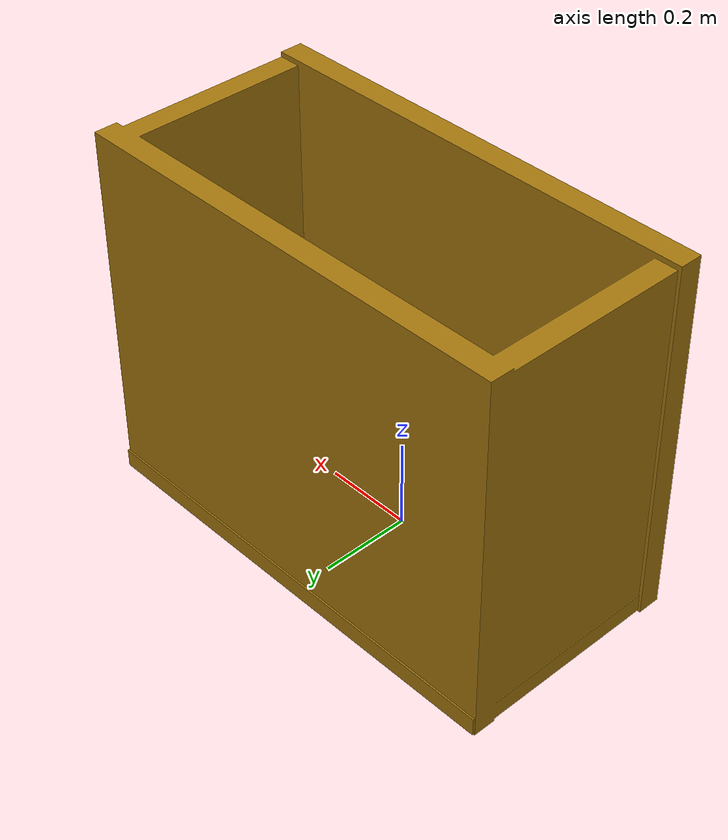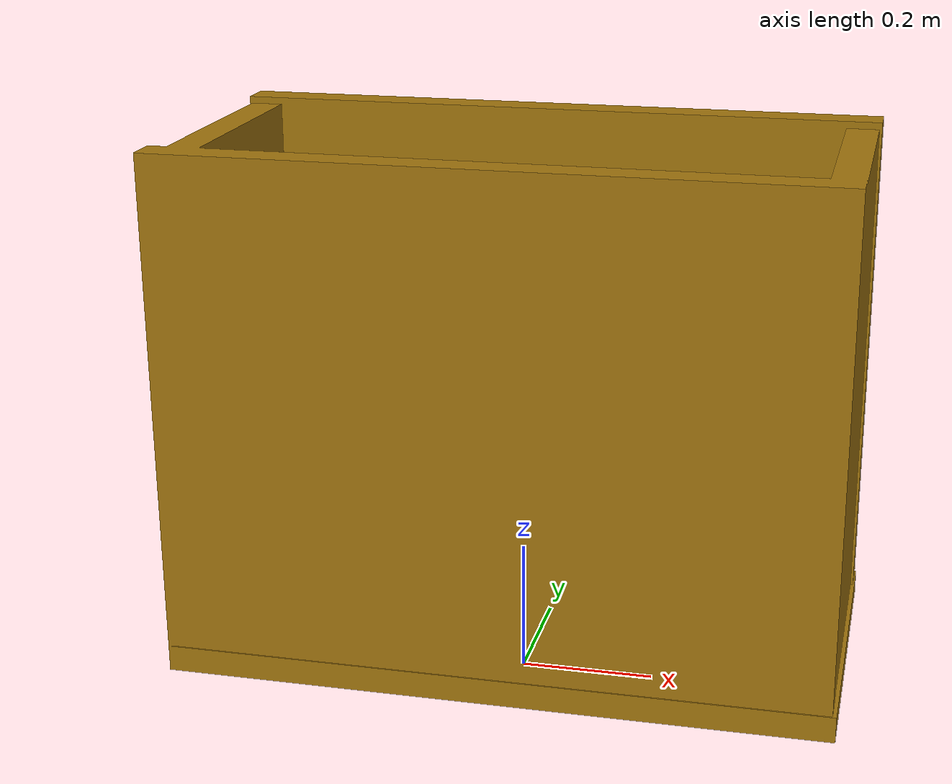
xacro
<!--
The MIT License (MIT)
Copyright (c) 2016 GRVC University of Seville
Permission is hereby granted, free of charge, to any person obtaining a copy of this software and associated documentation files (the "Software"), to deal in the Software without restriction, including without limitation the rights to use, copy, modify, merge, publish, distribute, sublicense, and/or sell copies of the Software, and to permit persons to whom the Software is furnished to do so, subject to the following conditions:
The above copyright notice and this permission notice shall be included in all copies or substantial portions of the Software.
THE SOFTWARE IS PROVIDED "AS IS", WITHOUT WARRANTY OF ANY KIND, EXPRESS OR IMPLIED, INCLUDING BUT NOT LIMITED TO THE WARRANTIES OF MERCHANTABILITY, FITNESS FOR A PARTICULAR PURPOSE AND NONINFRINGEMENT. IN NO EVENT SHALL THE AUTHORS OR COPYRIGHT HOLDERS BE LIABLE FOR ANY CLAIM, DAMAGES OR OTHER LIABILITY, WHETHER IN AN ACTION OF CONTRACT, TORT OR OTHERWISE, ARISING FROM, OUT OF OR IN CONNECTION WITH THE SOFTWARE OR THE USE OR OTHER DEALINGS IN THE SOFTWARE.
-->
<?xml version="1.0"?>
<robot name="grvc_quadrotor" xmlns:xacro="http://ros.org/wiki/xacro">

  <xacro:arg name="model_name" default="drop_box"/>
  <xacro:arg name="id" default="1"/>

  <!-- Included URDF Files -->
  <xacro:include filename="$(find mbzirc_gcs_view)/urdf/dropping_box_base.urdf.xacro" />

  <!-- Instantiate quadrotor_base_macro once (has no parameters atm) -->
  <!-- model_name must be ual_${id} for ual node to find the uav -->
  <xacro:drop_box id="$(arg id)" model_name="$(arg model_name)"/>

</robot>

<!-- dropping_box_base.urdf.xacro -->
<robot xmlns:xacro="http://ros.org/wiki/xacro">

<!-- Main quadrotor link -->
<xacro:macro name="drop_box" params="id model_name">
  <link name="base_link_${id}">
    <inertial>
      <mass value="2" />
      <origin xyz="0 0 0.0" />
      <inertia ixx="0.01152" ixy="0.0" ixz="0.0" iyy="0.01152" iyz="0.0" izz="0.0218" />
    </inertial>

    <visual>
      <origin xyz="0 0 0" rpy="0 0 1.57" />
      <geometry>
        <mesh filename="package://mbzirc_gcs_view/model/drop_box_scale.dae"/>
      </geometry>
    </visual>

    <collision>
      <origin xyz="0 0 0" rpy="0 0 0" />
      <geometry>
        <mesh filename="package://mbzirc_gcs_view/model/drop_box_scale.dae"/>
      </geometry>
    </collision>
  </link>

  </xacro:macro>

</robot>
